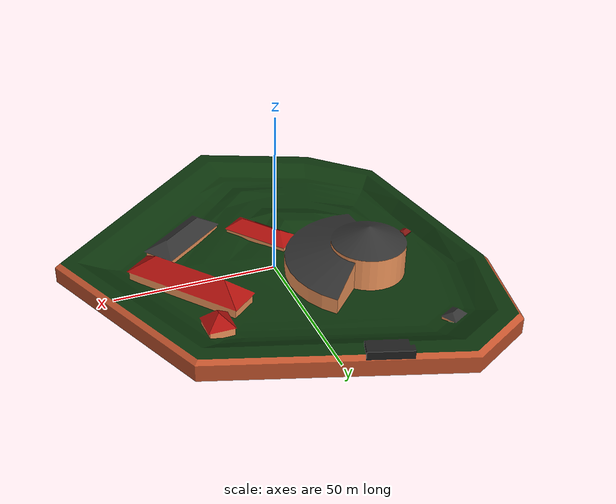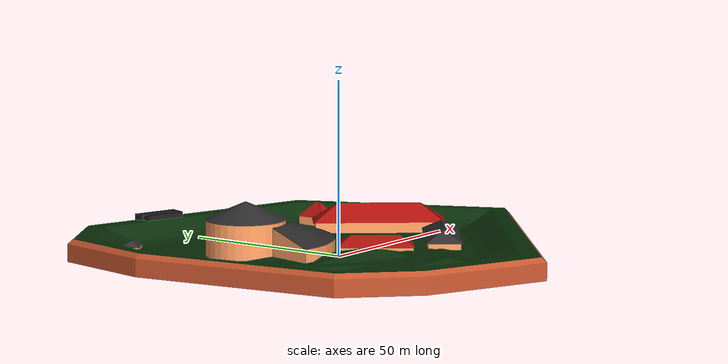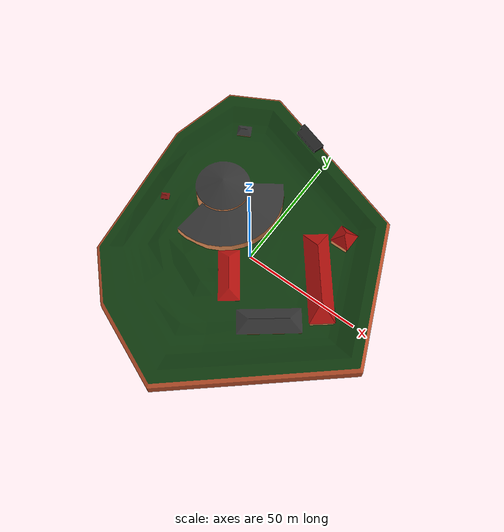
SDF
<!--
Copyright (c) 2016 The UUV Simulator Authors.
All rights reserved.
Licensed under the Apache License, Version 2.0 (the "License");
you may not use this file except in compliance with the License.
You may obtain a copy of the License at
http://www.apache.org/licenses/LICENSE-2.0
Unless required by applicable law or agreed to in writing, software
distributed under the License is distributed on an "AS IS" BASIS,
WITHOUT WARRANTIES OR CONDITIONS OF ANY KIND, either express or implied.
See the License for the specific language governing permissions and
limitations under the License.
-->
<?xml version="1.0" ?>
<sdf version="1.5">
  <model name="mulkholmen_island">
    <static>true</static>
    <link name="mulkholmen_island">
      <collision name="island">
        <pose>0 0 0 0 0 0</pose>
        <geometry>
          <box>
            <size>122.319138 133.827057 17.302723</size>
          </box>
        </geometry>
      </collision>

      <visual name="island">
        <cast_shadows>true</cast_shadows>
        <pose>0 0 0 0 0 0</pose>
        <geometry>
          <mesh>
            <uri>model://munkholmen/meshes/munkholmen.dae</uri>
            <scale>1.0 1.0 1.0</scale>
          </mesh>
        </geometry>
      </visual>
    </link>
  </model>
</sdf>
